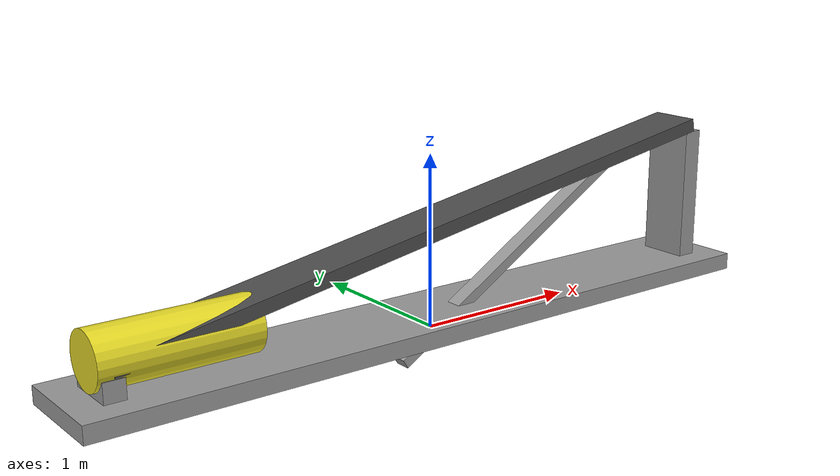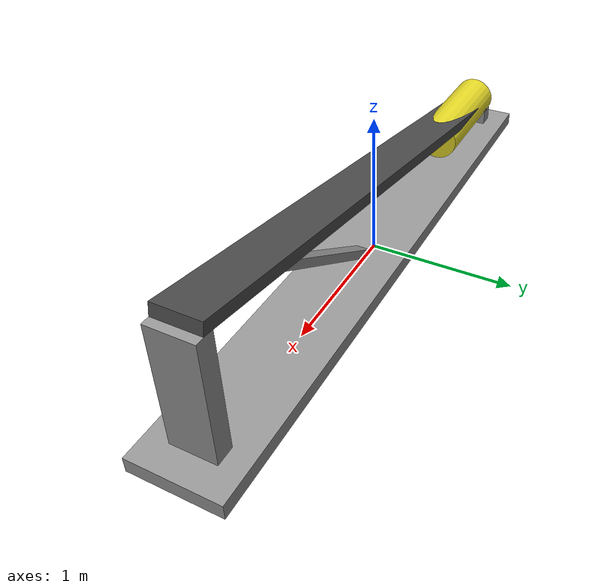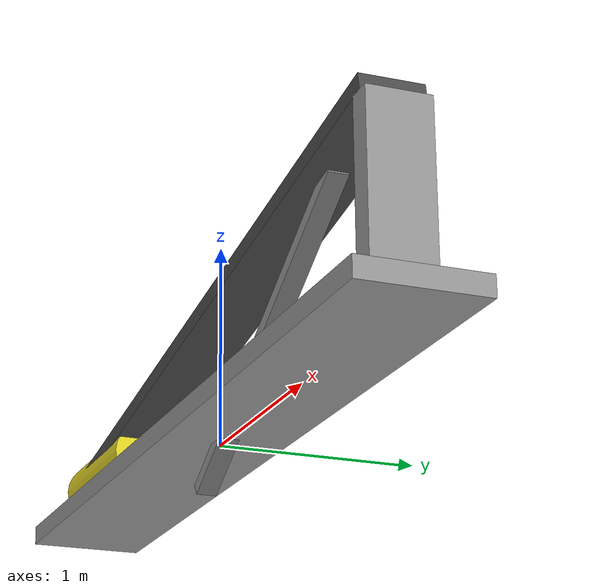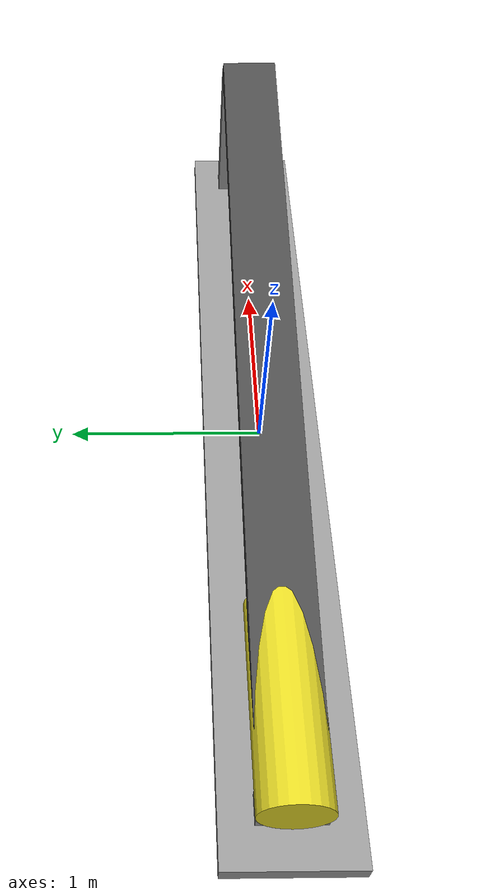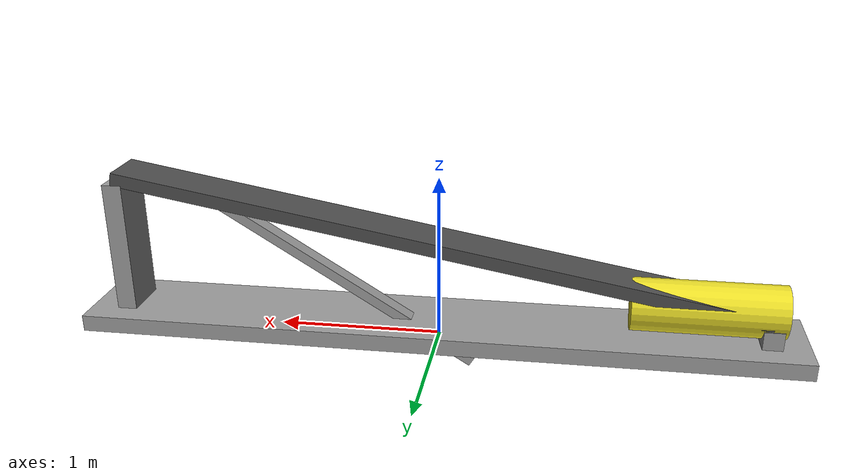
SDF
<?xml version="1.0"?>
<sdf version="1.6">
  <model name="mancinik">
    <static>true</static>
    <link name="govde">

      <!-- Kaide — zemine oturan taban plakası -->
      <collision name="kaide_collision">
        <pose>0 0 0.05 0 0 0</pose>
        <geometry><box><size>4.4 0.60 0.10</size></box></geometry>
      </collision>
      <visual name="kaide">
        <pose>0 0 0.05 0 0 0</pose>
        <geometry><box><size>4.4 0.60 0.10</size></box></geometry>
        <material><script><name>Gazebo/Grey</name></script></material>
      </visual>

      <!-- Ray — İHA bunun üzerinde duruyor. Sürtünme İHA'yı 10°
           eğimde tutmalı: gereken mu > tan(10°) = 0.176. -->
      <collision name="ray_collision">
        <pose>0 0 0.60 0 -0.174533 0</pose>
        <geometry><box><size>4.0 0.30 0.08</size></box></geometry>
        <surface>
          <friction><ode><mu>1.0</mu><mu2>1.0</mu2></ode></friction>
        </surface>
      </collision>
      <visual name="ray">
        <pose>0 0 0.60 0 -0.174533 0</pose>
        <geometry><box><size>4.0 0.30 0.08</size></box></geometry>
        <material><script><name>Gazebo/DarkGrey</name></script></material>
      </visual>

      <!-- Arka ayak: kaide üstü 0.10 → ray arka alt yüzü 0.213 -->
      <collision name="arka_ayak_collision">
        <pose>-1.97 0 0.157 0 0 0</pose>
        <geometry><box><size>0.12 0.30 0.113</size></box></geometry>
      </collision>
      <visual name="arka_ayak">
        <pose>-1.97 0 0.157 0 0 0</pose>
        <geometry><box><size>0.12 0.30 0.113</size></box></geometry>
        <material><script><name>Gazebo/Grey</name></script></material>
      </visual>

      <!-- Ön ayak: kaide üstü 0.10 → ray ön alt yüzü 0.908 -->
      <collision name="on_ayak_collision">
        <pose>1.97 0 0.504 0 0 0</pose>
        <geometry><box><size>0.12 0.30 0.808</size></box></geometry>
      </collision>
      <visual name="on_ayak">
        <pose>1.97 0 0.504 0 0 0</pose>
        <geometry><box><size>0.12 0.30 0.808</size></box></geometry>
        <material><script><name>Gazebo/Grey</name></script></material>
      </visual>

      <!-- Çapraz destek — yalnız görsel, temas yükü taşımıyor -->
      <visual name="capraz">
        <pose>0.6 0 0.33 0 -0.55 0</pose>
        <geometry><box><size>1.9 0.10 0.06</size></box></geometry>
        <material><script><name>Gazebo/Grey</name></script></material>
      </visual>

      <!-- Basınç tankı — pnömatik sistemin görsel karşılığı -->
      <visual name="tank">
        <pose>-1.6 0 0.28 0 1.5708 0</pose>
        <geometry><cylinder><radius>0.16</radius><length>0.9</length></cylinder></geometry>
        <material><script><name>Gazebo/Yellow</name></script></material>
      </visual>

    </link>
  </model>
</sdf>
